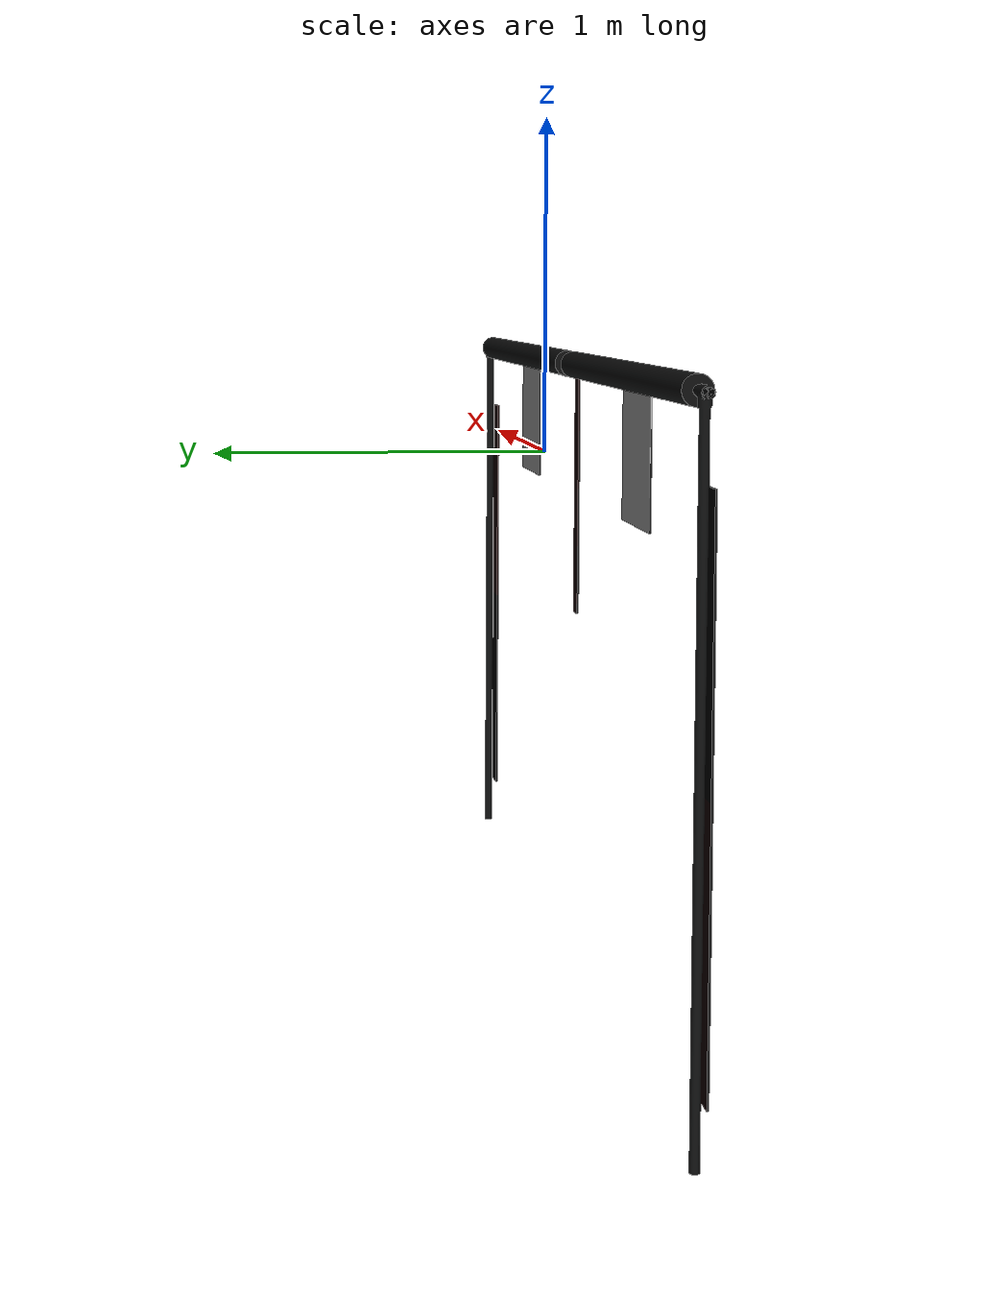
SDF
<?xml version="1.0" encoding="UTF-8"?>
<sdf version="1.6">
   <model name="gate">
      <static>true</static>
      <link name="base_link">
        <visual name="gate">
            <geometry>
               <mesh>
                  <uri>model://gate/gate.dae</uri>
               </mesh>
            </geometry>
        </visual>
      </link>
   </model>
    </sdf>
